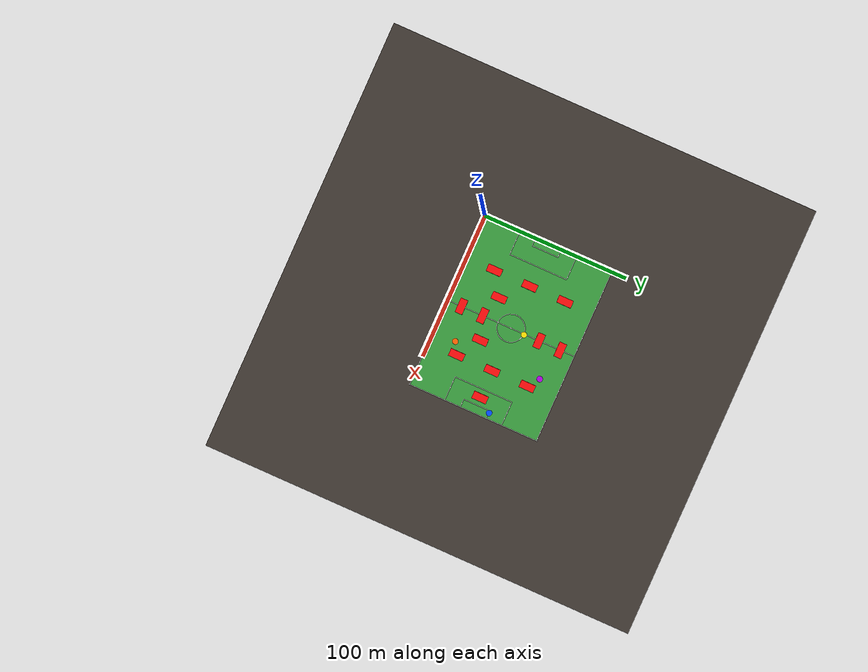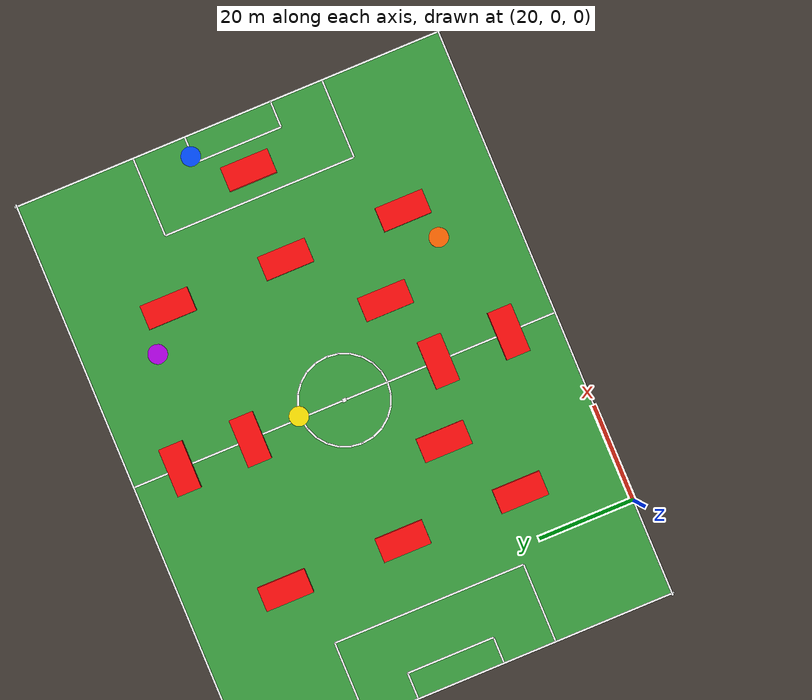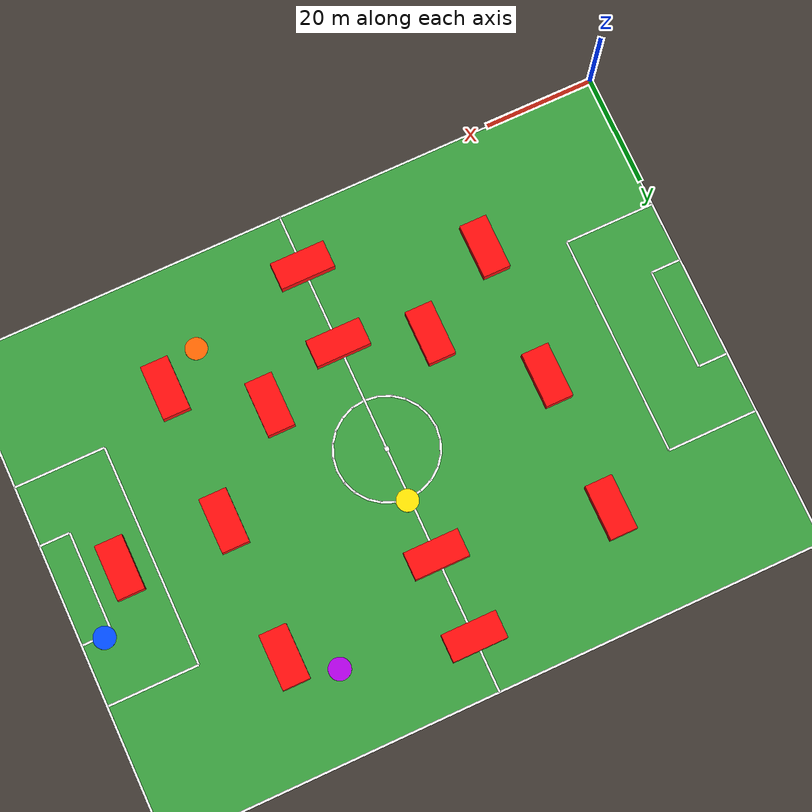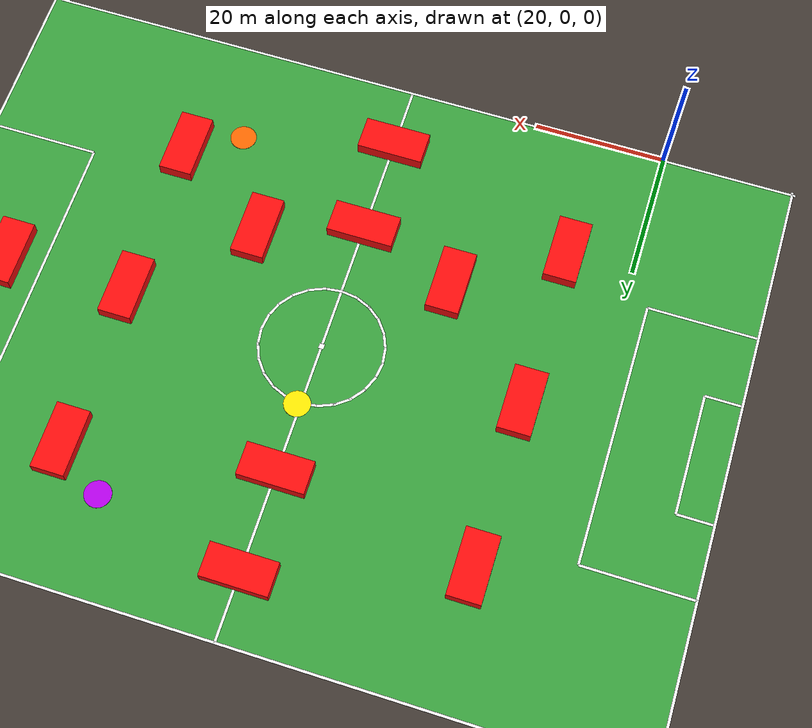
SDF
<sdf version="1.6">
 <world name="sen771_world">
  <scene><grid>false</grid><origin_visual>false</origin_visual><shadows>false</shadows></scene>
  <physics name="0.5ms" type="ignored">
   <max_step_size>0.001</max_step_size>
   <real_time_factor>8.0</real_time_factor>
  </physics>
  <plugin filename="gz-sim-physics-system" name="gz::sim::systems::Physics"/>
  <plugin filename="gz-sim-user-commands-system" name="gz::sim::systems::UserCommands"/>
  <plugin filename="gz-sim-scene-broadcaster-system" name="gz::sim::systems::SceneBroadcaster"/>
  <plugin filename="gz-sim-contact-system" name="gz::sim::systems::Contact"/>
  <light type="directional" name="sun">
   <cast_shadows>false</cast_shadows>
   <pose>0 0 100 0 0 0</pose>
   <diffuse>0.9 0.9 0.9 1</diffuse>
   <specular>0.3 0.3 0.3 1</specular>
   <direction>-0.4 0.2 -0.9</direction>
  </light>
  <model name="ground_base">
   <static>true</static>
   <pose>60 45 -0.01 0 0 0</pose>
   <link name="link">
    <collision name="c"><geometry><box><size>300 300 0.02</size></box></geometry></collision>
    <visual name="v">
     <geometry><box><size>300 300 0.02</size></box></geometry>
     <material><ambient>0.25 0.22 0.2 1</ambient><diffuse>0.25 0.22 0.2 1</diffuse></material>
    </visual>
   </link>
  </model>
  <model name="soccer_field">
   <static>true</static>
   <pose>60 45 0 0 0 0</pose>
   <link name="link">
    <collision name="col"><geometry><box><size>120 90 0.05</size></box></geometry></collision>
    <visual name="vis">
     <geometry><box><size>120 90 0.05</size></box></geometry>
     <material>
      <ambient>0.18 0.55 0.20 1</ambient>
      <diffuse>0.22 0.62 0.24 1</diffuse>
      <specular>0.05 0.05 0.05 1</specular>
     </material>
    </visual>
   </link>
  </model>
  <model name="line_bottom">
   <static>true</static>
   <pose>60 0 0.03 0 0 0</pose>
   <link name="l">
    <visual name="v">
     <geometry><box><size>121 0.4 0.02</size></box></geometry>
     <material><ambient>1 1 1 1</ambient><diffuse>1 1 1 1</diffuse></material>
    </visual>
   </link>
  </model>
  <model name="line_top">
   <static>true</static>
   <pose>60 90 0.03 0 0 0</pose>
   <link name="l">
    <visual name="v">
     <geometry><box><size>121 0.4 0.02</size></box></geometry>
     <material><ambient>1 1 1 1</ambient><diffuse>1 1 1 1</diffuse></material>
    </visual>
   </link>
  </model>
  <model name="line_left">
   <static>true</static>
   <pose>0 45 0.03 0 0 0</pose>
   <link name="l">
    <visual name="v">
     <geometry><box><size>0.4 91 0.02</size></box></geometry>
     <material><ambient>1 1 1 1</ambient><diffuse>1 1 1 1</diffuse></material>
    </visual>
   </link>
  </model>
  <model name="line_right">
   <static>true</static>
   <pose>120 45 0.03 0 0 0</pose>
   <link name="l">
    <visual name="v">
     <geometry><box><size>0.4 91 0.02</size></box></geometry>
     <material><ambient>1 1 1 1</ambient><diffuse>1 1 1 1</diffuse></material>
    </visual>
   </link>
  </model>
  <model name="line_center">
   <static>true</static>
   <pose>60 45 0.03 0 0 0</pose>
   <link name="l">
    <visual name="v">
     <geometry><box><size>0.4 90 0.02</size></box></geometry>
     <material><ambient>1 1 1 1</ambient><diffuse>1 1 1 1</diffuse></material>
    </visual>
   </link>
  </model>
  <model name="cc_00">
   <static>true</static>
   <pose>69.072 46.194 0.03 0 0 1.7017</pose>
   <link name="l">
    <visual name="v">
     <geometry><box><size>2.789 0.4 0.02</size></box></geometry>
     <material><ambient>1 1 1 1</ambient><diffuse>1 1 1 1</diffuse></material>
    </visual>
   </link>
  </model>
  <model name="cc_01">
   <static>true</static>
   <pose>68.453 48.502 0.03 0 0 1.9635</pose>
   <link name="l">
    <visual name="v">
     <geometry><box><size>2.789 0.4 0.02</size></box></geometry>
     <material><ambient>1 1 1 1</ambient><diffuse>1 1 1 1</diffuse></material>
    </visual>
   </link>
  </model>
  <model name="cc_02">
   <static>true</static>
   <pose>67.259 50.570 0.03 0 0 2.2253</pose>
   <link name="l">
    <visual name="v">
     <geometry><box><size>2.789 0.4 0.02</size></box></geometry>
     <material><ambient>1 1 1 1</ambient><diffuse>1 1 1 1</diffuse></material>
    </visual>
   </link>
  </model>
  <model name="cc_03">
   <static>true</static>
   <pose>65.570 52.259 0.03 0 0 2.4871</pose>
   <link name="l">
    <visual name="v">
     <geometry><box><size>2.789 0.4 0.02</size></box></geometry>
     <material><ambient>1 1 1 1</ambient><diffuse>1 1 1 1</diffuse></material>
    </visual>
   </link>
  </model>
  <model name="cc_04">
   <static>true</static>
   <pose>63.502 53.453 0.03 0 0 2.7489</pose>
   <link name="l">
    <visual name="v">
     <geometry><box><size>2.789 0.4 0.02</size></box></geometry>
     <material><ambient>1 1 1 1</ambient><diffuse>1 1 1 1</diffuse></material>
    </visual>
   </link>
  </model>
  <model name="cc_05">
   <static>true</static>
   <pose>61.194 54.072 0.03 0 0 3.0107</pose>
   <link name="l">
    <visual name="v">
     <geometry><box><size>2.789 0.4 0.02</size></box></geometry>
     <material><ambient>1 1 1 1</ambient><diffuse>1 1 1 1</diffuse></material>
    </visual>
   </link>
  </model>
  <model name="cc_06">
   <static>true</static>
   <pose>58.806 54.072 0.03 0 0 3.2725</pose>
   <link name="l">
    <visual name="v">
     <geometry><box><size>2.789 0.4 0.02</size></box></geometry>
     <material><ambient>1 1 1 1</ambient><diffuse>1 1 1 1</diffuse></material>
    </visual>
   </link>
  </model>
  <model name="cc_07">
   <static>true</static>
   <pose>56.498 53.453 0.03 0 0 3.5343</pose>
   <link name="l">
    <visual name="v">
     <geometry><box><size>2.789 0.4 0.02</size></box></geometry>
     <material><ambient>1 1 1 1</ambient><diffuse>1 1 1 1</diffuse></material>
    </visual>
   </link>
  </model>
  <model name="cc_08">
   <static>true</static>
   <pose>54.430 52.259 0.03 0 0 3.7961</pose>
   <link name="l">
    <visual name="v">
     <geometry><box><size>2.789 0.4 0.02</size></box></geometry>
     <material><ambient>1 1 1 1</ambient><diffuse>1 1 1 1</diffuse></material>
    </visual>
   </link>
  </model>
  <model name="cc_09">
   <static>true</static>
   <pose>52.741 50.570 0.03 0 0 4.0579</pose>
   <link name="l">
    <visual name="v">
     <geometry><box><size>2.789 0.4 0.02</size></box></geometry>
     <material><ambient>1 1 1 1</ambient><diffuse>1 1 1 1</diffuse></material>
    </visual>
   </link>
  </model>
  <model name="cc_10">
   <static>true</static>
   <pose>51.547 48.502 0.03 0 0 4.3197</pose>
   <link name="l">
    <visual name="v">
     <geometry><box><size>2.789 0.4 0.02</size></box></geometry>
     <material><ambient>1 1 1 1</ambient><diffuse>1 1 1 1</diffuse></material>
    </visual>
   </link>
  </model>
  <model name="cc_11">
   <static>true</static>
   <pose>50.928 46.194 0.03 0 0 4.5815</pose>
   <link name="l">
    <visual name="v">
     <geometry><box><size>2.789 0.4 0.02</size></box></geometry>
     <material><ambient>1 1 1 1</ambient><diffuse>1 1 1 1</diffuse></material>
    </visual>
   </link>
  </model>
  <model name="cc_12">
   <static>true</static>
   <pose>50.928 43.806 0.03 0 0 4.8433</pose>
   <link name="l">
    <visual name="v">
     <geometry><box><size>2.789 0.4 0.02</size></box></geometry>
     <material><ambient>1 1 1 1</ambient><diffuse>1 1 1 1</diffuse></material>
    </visual>
   </link>
  </model>
  <model name="cc_13">
   <static>true</static>
   <pose>51.547 41.498 0.03 0 0 5.1051</pose>
   <link name="l">
    <visual name="v">
     <geometry><box><size>2.789 0.4 0.02</size></box></geometry>
     <material><ambient>1 1 1 1</ambient><diffuse>1 1 1 1</diffuse></material>
    </visual>
   </link>
  </model>
  <model name="cc_14">
   <static>true</static>
   <pose>52.741 39.430 0.03 0 0 5.3669</pose>
   <link name="l">
    <visual name="v">
     <geometry><box><size>2.789 0.4 0.02</size></box></geometry>
     <material><ambient>1 1 1 1</ambient><diffuse>1 1 1 1</diffuse></material>
    </visual>
   </link>
  </model>
  <model name="cc_15">
   <static>true</static>
   <pose>54.430 37.741 0.03 0 0 5.6287</pose>
   <link name="l">
    <visual name="v">
     <geometry><box><size>2.789 0.4 0.02</size></box></geometry>
     <material><ambient>1 1 1 1</ambient><diffuse>1 1 1 1</diffuse></material>
    </visual>
   </link>
  </model>
  <model name="cc_16">
   <static>true</static>
   <pose>56.498 36.547 0.03 0 0 5.8905</pose>
   <link name="l">
    <visual name="v">
     <geometry><box><size>2.789 0.4 0.02</size></box></geometry>
     <material><ambient>1 1 1 1</ambient><diffuse>1 1 1 1</diffuse></material>
    </visual>
   </link>
  </model>
  <model name="cc_17">
   <static>true</static>
   <pose>58.806 35.928 0.03 0 0 6.1523</pose>
   <link name="l">
    <visual name="v">
     <geometry><box><size>2.789 0.4 0.02</size></box></geometry>
     <material><ambient>1 1 1 1</ambient><diffuse>1 1 1 1</diffuse></material>
    </visual>
   </link>
  </model>
  <model name="cc_18">
   <static>true</static>
   <pose>61.194 35.928 0.03 0 0 6.4141</pose>
   <link name="l">
    <visual name="v">
     <geometry><box><size>2.789 0.4 0.02</size></box></geometry>
     <material><ambient>1 1 1 1</ambient><diffuse>1 1 1 1</diffuse></material>
    </visual>
   </link>
  </model>
  <model name="cc_19">
   <static>true</static>
   <pose>63.502 36.547 0.03 0 0 6.6759</pose>
   <link name="l">
    <visual name="v">
     <geometry><box><size>2.789 0.4 0.02</size></box></geometry>
     <material><ambient>1 1 1 1</ambient><diffuse>1 1 1 1</diffuse></material>
    </visual>
   </link>
  </model>
  <model name="cc_20">
   <static>true</static>
   <pose>65.570 37.741 0.03 0 0 6.9377</pose>
   <link name="l">
    <visual name="v">
     <geometry><box><size>2.789 0.4 0.02</size></box></geometry>
     <material><ambient>1 1 1 1</ambient><diffuse>1 1 1 1</diffuse></material>
    </visual>
   </link>
  </model>
  <model name="cc_21">
   <static>true</static>
   <pose>67.259 39.430 0.03 0 0 7.1995</pose>
   <link name="l">
    <visual name="v">
     <geometry><box><size>2.789 0.4 0.02</size></box></geometry>
     <material><ambient>1 1 1 1</ambient><diffuse>1 1 1 1</diffuse></material>
    </visual>
   </link>
  </model>
  <model name="cc_22">
   <static>true</static>
   <pose>68.453 41.498 0.03 0 0 7.4613</pose>
   <link name="l">
    <visual name="v">
     <geometry><box><size>2.789 0.4 0.02</size></box></geometry>
     <material><ambient>1 1 1 1</ambient><diffuse>1 1 1 1</diffuse></material>
    </visual>
   </link>
  </model>
  <model name="cc_23">
   <static>true</static>
   <pose>69.072 43.806 0.03 0 0 7.7231</pose>
   <link name="l">
    <visual name="v">
     <geometry><box><size>2.789 0.4 0.02</size></box></geometry>
     <material><ambient>1 1 1 1</ambient><diffuse>1 1 1 1</diffuse></material>
    </visual>
   </link>
  </model>
  <model name="centre_spot">
   <static>true</static>
   <pose>60 45 0.031 0 0 0</pose>
   <link name="l">
    <visual name="v">
     <geometry><box><size>0.8 0.8 0.02</size></box></geometry>
     <material><ambient>1 1 1 1</ambient><diffuse>1 1 1 1</diffuse></material>
    </visual>
   </link>
  </model>
  <model name="pen_L_top">
   <static>true</static>
   <pose>8.25 65.16 0.03 0 0 0</pose>
   <link name="l">
    <visual name="v">
     <geometry><box><size>16.5 0.4 0.02</size></box></geometry>
     <material><ambient>1 1 1 1</ambient><diffuse>1 1 1 1</diffuse></material>
    </visual>
   </link>
  </model>
  <model name="pen_L_bot">
   <static>true</static>
   <pose>8.25 24.84 0.03 0 0 0</pose>
   <link name="l">
    <visual name="v">
     <geometry><box><size>16.5 0.4 0.02</size></box></geometry>
     <material><ambient>1 1 1 1</ambient><diffuse>1 1 1 1</diffuse></material>
    </visual>
   </link>
  </model>
  <model name="pen_L_inner">
   <static>true</static>
   <pose>16.5 45.0 0.03 0 0 0</pose>
   <link name="l">
    <visual name="v">
     <geometry><box><size>0.4 40.32 0.02</size></box></geometry>
     <material><ambient>1 1 1 1</ambient><diffuse>1 1 1 1</diffuse></material>
    </visual>
   </link>
  </model>
  <model name="six_L_top">
   <static>true</static>
   <pose>2.75 54.16 0.03 0 0 0</pose>
   <link name="l">
    <visual name="v">
     <geometry><box><size>5.5 0.4 0.02</size></box></geometry>
     <material><ambient>1 1 1 1</ambient><diffuse>1 1 1 1</diffuse></material>
    </visual>
   </link>
  </model>
  <model name="six_L_bot">
   <static>true</static>
   <pose>2.75 35.84 0.03 0 0 0</pose>
   <link name="l">
    <visual name="v">
     <geometry><box><size>5.5 0.4 0.02</size></box></geometry>
     <material><ambient>1 1 1 1</ambient><diffuse>1 1 1 1</diffuse></material>
    </visual>
   </link>
  </model>
  <model name="six_L_inner">
   <static>true</static>
   <pose>5.5 45.0 0.03 0 0 0</pose>
   <link name="l">
    <visual name="v">
     <geometry><box><size>0.4 18.32 0.02</size></box></geometry>
     <material><ambient>1 1 1 1</ambient><diffuse>1 1 1 1</diffuse></material>
    </visual>
   </link>
  </model>
  <model name="pen_R_top">
   <static>true</static>
   <pose>111.75 65.16 0.03 0 0 0</pose>
   <link name="l">
    <visual name="v">
     <geometry><box><size>16.5 0.4 0.02</size></box></geometry>
     <material><ambient>1 1 1 1</ambient><diffuse>1 1 1 1</diffuse></material>
    </visual>
   </link>
  </model>
  <model name="pen_R_bot">
   <static>true</static>
   <pose>111.75 24.84 0.03 0 0 0</pose>
   <link name="l">
    <visual name="v">
     <geometry><box><size>16.5 0.4 0.02</size></box></geometry>
     <material><ambient>1 1 1 1</ambient><diffuse>1 1 1 1</diffuse></material>
    </visual>
   </link>
  </model>
  <model name="pen_R_inner">
   <static>true</static>
   <pose>103.5 45.0 0.03 0 0 0</pose>
   <link name="l">
    <visual name="v">
     <geometry><box><size>0.4 40.32 0.02</size></box></geometry>
     <material><ambient>1 1 1 1</ambient><diffuse>1 1 1 1</diffuse></material>
    </visual>
   </link>
  </model>
  <model name="six_R_top">
   <static>true</static>
   <pose>117.25 54.16 0.03 0 0 0</pose>
   <link name="l">
    <visual name="v">
     <geometry><box><size>5.5 0.4 0.02</size></box></geometry>
     <material><ambient>1 1 1 1</ambient><diffuse>1 1 1 1</diffuse></material>
    </visual>
   </link>
  </model>
  <model name="six_R_bot">
   <static>true</static>
   <pose>117.25 35.84 0.03 0 0 0</pose>
   <link name="l">
    <visual name="v">
     <geometry><box><size>5.5 0.4 0.02</size></box></geometry>
     <material><ambient>1 1 1 1</ambient><diffuse>1 1 1 1</diffuse></material>
    </visual>
   </link>
  </model>
  <model name="six_R_inner">
   <static>true</static>
   <pose>114.5 45.0 0.03 0 0 0</pose>
   <link name="l">
    <visual name="v">
     <geometry><box><size>0.4 18.32 0.02</size></box></geometry>
     <material><ambient>1 1 1 1</ambient><diffuse>1 1 1 1</diffuse></material>
    </visual>
   </link>
  </model>
  <model name="obs_01">
   <static>true</static>
   <pose>30 70 1 0 0 0</pose>
   <link name="link">
    <collision name="c"><geometry><box><size>5 10 2</size></box></geometry></collision>
    <visual name="v">
     <geometry><box><size>5 10 2</size></box></geometry>
     <material><ambient>0.9 0.05 0.05 1</ambient><diffuse>1 0.05 0.05 1</diffuse></material>
    </visual>
   </link>
  </model>
  <model name="obs_02">
   <static>true</static>
   <pose>30 45 1 0 0 0</pose>
   <link name="link">
    <collision name="c"><geometry><box><size>5 10 2</size></box></geometry></collision>
    <visual name="v">
     <geometry><box><size>5 10 2</size></box></geometry>
     <material><ambient>0.9 0.05 0.05 1</ambient><diffuse>1 0.05 0.05 1</diffuse></material>
    </visual>
   </link>
  </model>
  <model name="obs_03">
   <static>true</static>
   <pose>30 20 1 0 0 0</pose>
   <link name="link">
    <collision name="c"><geometry><box><size>5 10 2</size></box></geometry></collision>
    <visual name="v">
     <geometry><box><size>5 10 2</size></box></geometry>
     <material><ambient>0.9 0.05 0.05 1</ambient><diffuse>1 0.05 0.05 1</diffuse></material>
    </visual>
   </link>
  </model>
  <model name="obs_05">
   <static>true</static>
   <pose>45 30 1 0 0 0</pose>
   <link name="link">
    <collision name="c"><geometry><box><size>5 10 2</size></box></geometry></collision>
    <visual name="v">
     <geometry><box><size>5 10 2</size></box></geometry>
     <material><ambient>0.9 0.05 0.05 1</ambient><diffuse>1 0.05 0.05 1</diffuse></material>
    </visual>
   </link>
  </model>
  <model name="obs_06">
   <static>true</static>
   <pose>60 80 1 0 0 0</pose>
   <link name="link">
    <collision name="c"><geometry><box><size>10 5 2</size></box></geometry></collision>
    <visual name="v">
     <geometry><box><size>10 5 2</size></box></geometry>
     <material><ambient>0.9 0.05 0.05 1</ambient><diffuse>1 0.05 0.05 1</diffuse></material>
    </visual>
   </link>
  </model>
  <model name="obs_07">
   <static>true</static>
   <pose>60 65 1 0 0 0</pose>
   <link name="link">
    <collision name="c"><geometry><box><size>10 5 2</size></box></geometry></collision>
    <visual name="v">
     <geometry><box><size>10 5 2</size></box></geometry>
     <material><ambient>0.9 0.05 0.05 1</ambient><diffuse>1 0.05 0.05 1</diffuse></material>
    </visual>
   </link>
  </model>
  <model name="obs_08">
   <static>true</static>
   <pose>60 25 1 0 0 0</pose>
   <link name="link">
    <collision name="c"><geometry><box><size>10 5 2</size></box></geometry></collision>
    <visual name="v">
     <geometry><box><size>10 5 2</size></box></geometry>
     <material><ambient>0.9 0.05 0.05 1</ambient><diffuse>1 0.05 0.05 1</diffuse></material>
    </visual>
   </link>
  </model>
  <model name="obs_09">
   <static>true</static>
   <pose>60 10 1 0 0 0</pose>
   <link name="link">
    <collision name="c"><geometry><box><size>10 5 2</size></box></geometry></collision>
    <visual name="v">
     <geometry><box><size>10 5 2</size></box></geometry>
     <material><ambient>0.9 0.05 0.05 1</ambient><diffuse>1 0.05 0.05 1</diffuse></material>
    </visual>
   </link>
  </model>
  <model name="obs_11">
   <static>true</static>
   <pose>75 30 1 0 0 0</pose>
   <link name="link">
    <collision name="c"><geometry><box><size>5 10 2</size></box></geometry></collision>
    <visual name="v">
     <geometry><box><size>5 10 2</size></box></geometry>
     <material><ambient>0.9 0.05 0.05 1</ambient><diffuse>1 0.05 0.05 1</diffuse></material>
    </visual>
   </link>
  </model>
  <model name="obs_12">
   <static>true</static>
   <pose>90 70 1 0 0 0</pose>
   <link name="link">
    <collision name="c"><geometry><box><size>5 10 2</size></box></geometry></collision>
    <visual name="v">
     <geometry><box><size>5 10 2</size></box></geometry>
     <material><ambient>0.9 0.05 0.05 1</ambient><diffuse>1 0.05 0.05 1</diffuse></material>
    </visual>
   </link>
  </model>
  <model name="obs_13">
   <static>true</static>
   <pose>90 45 1 0 0 0</pose>
   <link name="link">
    <collision name="c"><geometry><box><size>5 10 2</size></box></geometry></collision>
    <visual name="v">
     <geometry><box><size>5 10 2</size></box></geometry>
     <material><ambient>0.9 0.05 0.05 1</ambient><diffuse>1 0.05 0.05 1</diffuse></material>
    </visual>
   </link>
  </model>
  <model name="obs_14">
   <static>true</static>
   <pose>90 20 1 0 0 0</pose>
   <link name="link">
    <collision name="c"><geometry><box><size>5 10 2</size></box></geometry></collision>
    <visual name="v">
     <geometry><box><size>5 10 2</size></box></geometry>
     <material><ambient>0.9 0.05 0.05 1</ambient><diffuse>1 0.05 0.05 1</diffuse></material>
    </visual>
   </link>
  </model>
  <model name="obs_15">
   <static>true</static>
   <pose>109 45 1 0 0 0</pose>
   <link name="link">
    <collision name="c"><geometry><box><size>5 10 2</size></box></geometry></collision>
    <visual name="v">
     <geometry><box><size>5 10 2</size></box></geometry>
     <material><ambient>0.9 0.05 0.05 1</ambient><diffuse>1 0.05 0.05 1</diffuse></material>
    </visual>
   </link>
  </model>
  <model name="target_1">
   <static>true</static>
   <pose>116.0 54.5 0.05 0 0 0</pose>
   <link name="link">
    <collision name="c">
     <geometry><cylinder><radius>2.0</radius><length>0.1</length></cylinder></geometry>
    </collision>
    <visual name="v">
     <geometry><cylinder><radius>2.0</radius><length>0.1</length></cylinder></geometry>
     <material><ambient>0.0 0.3 1.0 1</ambient><diffuse>0.0 0.3 1.0 1</diffuse></material>
    </visual>
   </link>
  </model>
  <model name="target_2">
   <static>true</static>
   <pose>82.5 15.5 0.05 0 0 0</pose>
   <link name="link">
    <collision name="c">
     <geometry><cylinder><radius>2.0</radius><length>0.1</length></cylinder></geometry>
    </collision>
    <visual name="v">
     <geometry><cylinder><radius>2.0</radius><length>0.1</length></cylinder></geometry>
     <material><ambient>1.0 0.4 0.0 1</ambient><diffuse>1.0 0.4 0.0 1</diffuse></material>
    </visual>
   </link>
  </model>
  <model name="target_3">
   <static>true</static>
   <pose>82.5 75.5 0.05 0 0 0</pose>
   <link name="link">
    <collision name="c">
     <geometry><cylinder><radius>2.0</radius><length>0.1</length></cylinder></geometry>
    </collision>
    <visual name="v">
     <geometry><cylinder><radius>2.0</radius><length>0.1</length></cylinder></geometry>
     <material><ambient>0.7 0.0 0.9 1</ambient><diffuse>0.7 0.0 0.9 1</diffuse></material>
    </visual>
   </link>
  </model>
  <model name="target_4">
   <static>true</static>
   <pose>60.5 54.5 0.05 0 0 0</pose>
   <link name="link">
    <collision name="c">
     <geometry><cylinder><radius>2.0</radius><length>0.1</length></cylinder></geometry>
    </collision>
    <visual name="v">
     <geometry><cylinder><radius>2.0</radius><length>0.1</length></cylinder></geometry>
     <material><ambient>1.0 0.9 0.0 1</ambient><diffuse>1.0 0.9 0.0 1</diffuse></material>
    </visual>
   </link>
  </model>
  <model name="wall_north">
   <static>true</static>
   <pose>60 90.1 0.5 0 0 0</pose>
   <link name="link">
    <collision name="c"><geometry><box><size>122 0.2 1</size></box></geometry></collision>
   </link>
  </model>
  <model name="wall_south">
   <static>true</static>
   <pose>60 -0.1 0.5 0 0 0</pose>
   <link name="link">
    <collision name="c"><geometry><box><size>122 0.2 1</size></box></geometry></collision>
   </link>
  </model>
  <model name="wall_east">
   <static>true</static>
   <pose>120.1 45 0.5 0 0 0</pose>
   <link name="link"><collision name="c"><geometry><box><size>0.2 92 1</size></box></geometry></collision></link>
  </model>
  <model name="wall_west">
   <static>true</static>
   <pose>-0.1 45 0.5 0 0 0</pose>
   <link name="link"><collision name="c"><geometry><box><size>0.2 92 1</size></box></geometry></collision></link>
  </model>
 </world>
</sdf>
